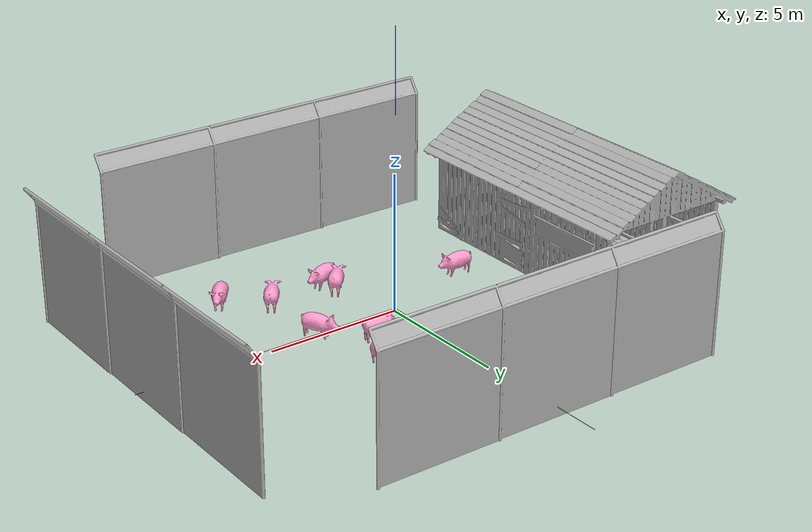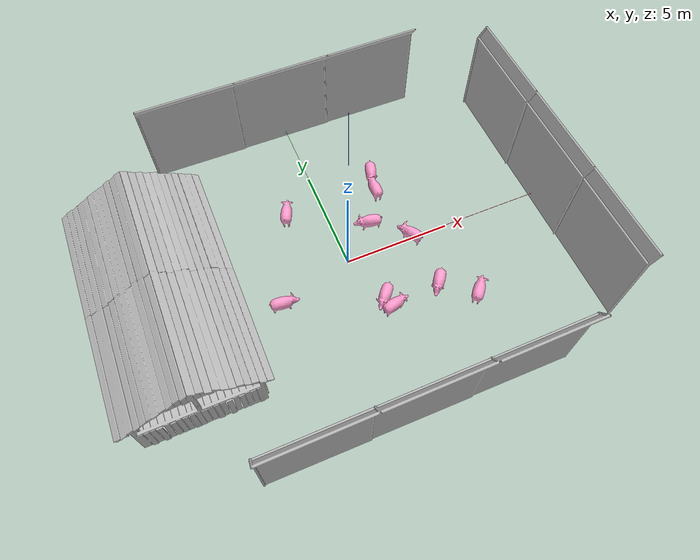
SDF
<sdf version="1.9">
 <world name="farm">
  <physics name="1ms" type="ignore">
   <max_step_size>0.001</max_step_size>
   <real_time_factor>1.0</real_time_factor>
  </physics>
  <plugin filename="gz-sim-physics-system" name="gz::sim::systems::Physics"/>
  <plugin filename="gz-sim-sensors-system" name="gz::sim::systems::Sensors">
   <render_engine>ogre2</render_engine>
  </plugin>
  <plugin filename="gz-sim-user-commands-system" name="gz::sim::systems::UserCommands"/>
  <plugin filename="gz-sim-scene-broadcaster-system" name="gz::sim::systems::SceneBroadcaster"/>
  <plugin filename="gz-sim-imu-system" name="gz::sim::systems::Imu"/>
  <plugin filename="gz-sim-navsat-system" name="gz::sim::systems::NavSat"/>
  <scene><ambient>1.0 1.0 1.0</ambient><background>0.8 0.8 0.8</background></scene>
  <spherical_coordinates>
   <latitude_deg>-35.363262</latitude_deg>
   <longitude_deg>149.165237</longitude_deg>
   <elevation>584</elevation>
   <heading_deg>0</heading_deg>
   <surface_model>EARTH_WGS84</surface_model>
  </spherical_coordinates>
  <light type="directional" name="sun">
   <pose>0 0 10 0 0 0</pose>
   <diffuse>0.8 0.8 0.8 1</diffuse>
   <specular>0.8 0.8 0.8 1</specular>
   <attenuation>
    <range>1000</range>
    <constant>0.9</constant>
    <linear>0.01</linear>
    <quadratic>0.001</quadratic>
   </attenuation>
   <direction>-0.5 0.1 -0.9</direction>
  </light>
  <model name="farm_animals">
   <static>1</static>
   <link name="link">
    <visual name="farm_house_visual">
     <pose degrees="true">-8 0 0 90 0 180</pose>
     <geometry><mesh><uri>model://farm/meshes/farm_house.obj</uri></mesh></geometry>
    </visual>
    <collision name="farm_house_collision">
     <pose degrees="true">-8 0 0 90 0 0</pose>
     <geometry><mesh><uri>model://farm/meshes/farm_house.obj</uri></mesh></geometry>
    </collision>
    <visual name="fence_left_visual">
     <pose degrees="true">0 8 0 90 0 0</pose>
     <geometry><mesh><uri>model://farm/meshes/wire_fence.obj</uri></mesh></geometry>
     <material>
      <pbr>
       <metal>
        <albedo>1.0 1.0 1.0 1.0</albedo>
        <metalness>1.0</metalness>
        <ambient_occlusion>1.0</ambient_occlusion>
       </metal>
      </pbr>
     </material>
    </visual>
    <collision name="fence_left_collision">
     <pose degrees="true">0 8 0 90 0 0</pose>
     <geometry><mesh><uri>model://farm/meshes/wire_fence.obj</uri></mesh></geometry>
    </collision>
    <visual name="fence_right_visual">
     <pose degrees="true">0 -8 0 90 0 0</pose>
     <geometry><mesh><uri>model://farm/meshes/wire_fence.obj</uri></mesh></geometry>
     <material>
      <pbr>
       <metal>
        <albedo>1.0 1.0 1.0 1.0</albedo>
        <metalness>1.0</metalness>
        <ambient_occlusion>1.0</ambient_occlusion>
       </metal>
      </pbr>
     </material>
    </visual>
    <collision name="fence_right_collision">
     <pose degrees="true">0 -8 0 90 0 0</pose>
     <geometry><mesh><uri>model://farm/meshes/wire_fence.obj</uri></mesh></geometry>
    </collision>
    <visual name="fence_back_visual">
     <pose degrees="true">10 0 0 90 0 90</pose>
     <geometry><mesh><uri>model://farm/meshes/wire_fence.obj</uri></mesh></geometry>
     <material>
      <pbr>
       <metal>
        <albedo>1.0 1.0 1.0 1.0</albedo>
        <metalness>1.0</metalness>
        <roughness>0.3</roughness>
        <ambient_occlusion>1.0</ambient_occlusion>
       </metal>
      </pbr>
     </material>
    </visual>
    <collision name="fence_back_collision">
     <pose degrees="true">10 0 0 90 0 90</pose>
     <geometry><mesh><uri>model://farm/meshes/wire_fence.obj</uri></mesh></geometry>
    </collision>
    <visual name="pig_visual0">
     <pose degrees="true">2.66 3.05 0 90 0 178.4</pose>
     <geometry><mesh><uri>model://farm/meshes/pig_low.obj</uri></mesh></geometry>
     <material>
      <ambient>1.0 0.6 0.8 1</ambient>
      <diffuse>1.0 0.6 0.8 1</diffuse>
      <specular>0.2 0.2 0.2 1</specular>
      <emissive>0 0 0 1</emissive>
     </material>
    </visual>
    <collision name="pig_collision0">
     <pose degrees="true">2.66 3.05 0 90 0 178.4</pose>
     <geometry><mesh><uri>model://farm/meshes/pig_low.obj</uri></mesh></geometry>
    </collision>
    <visual name="pig_visual1">
     <pose degrees="true">-1.74 3.31 0 90 0 156.8</pose>
     <geometry><mesh><uri>model://farm/meshes/pig_low.obj</uri></mesh></geometry>
     <material>
      <ambient>1.0 0.6 0.8 1</ambient>
      <diffuse>1.0 0.6 0.8 1</diffuse>
      <specular>0.2 0.2 0.2 1</specular>
      <emissive>0 0 0 1</emissive>
     </material>
    </visual>
    <collision name="pig_collision1">
     <pose degrees="true">-1.74 3.31 0 90 0 156.8</pose>
     <geometry><mesh><uri>model://farm/meshes/pig_low.obj</uri></mesh></geometry>
    </collision>
    <visual name="pig_visual2">
     <pose degrees="true">2.83 3.83 0 90 0 342.3</pose>
     <geometry><mesh><uri>model://farm/meshes/pig_low.obj</uri></mesh></geometry>
     <material>
      <ambient>1.0 0.6 0.8 1</ambient>
      <diffuse>1.0 0.6 0.8 1</diffuse>
      <specular>0.2 0.2 0.2 1</specular>
      <emissive>0 0 0 1</emissive>
     </material>
    </visual>
    <collision name="pig_collision2">
     <pose degrees="true">2.83 3.83 0 90 0 342.3</pose>
     <geometry><mesh><uri>model://farm/meshes/pig_low.obj</uri></mesh></geometry>
    </collision>
    <visual name="pig_visual3">
     <pose degrees="true">1.59 1.36 0 90 0 257.0</pose>
     <geometry><mesh><uri>model://farm/meshes/pig_low.obj</uri></mesh></geometry>
     <material>
      <ambient>1.0 0.6 0.8 1</ambient>
      <diffuse>1.0 0.6 0.8 1</diffuse>
      <specular>0.2 0.2 0.2 1</specular>
      <emissive>0 0 0 1</emissive>
     </material>
    </visual>
    <collision name="pig_collision3">
     <pose degrees="true">1.59 1.36 0 90 0 257.0</pose>
     <geometry><mesh><uri>model://farm/meshes/pig_low.obj</uri></mesh></geometry>
    </collision>
    <visual name="pig_visual4">
     <pose degrees="true">0.71 -2.45 0 90 0 318.0</pose>
     <geometry><mesh><uri>model://farm/meshes/pig_low.obj</uri></mesh></geometry>
     <material>
      <ambient>1.0 0.6 0.8 1</ambient>
      <diffuse>1.0 0.6 0.8 1</diffuse>
      <specular>0.2 0.2 0.2 1</specular>
      <emissive>0 0 0 1</emissive>
     </material>
    </visual>
    <collision name="pig_collision4">
     <pose degrees="true">0.71 -2.45 0 90 0 318.0</pose>
     <geometry><mesh><uri>model://farm/meshes/pig_low.obj</uri></mesh></geometry>
    </collision>
    <visual name="pig_visual5">
     <pose degrees="true">3.19 -2.74 0 90 0 322.7</pose>
     <geometry><mesh><uri>model://farm/meshes/pig_low.obj</uri></mesh></geometry>
     <material>
      <ambient>1.0 0.6 0.8 1</ambient>
      <diffuse>1.0 0.6 0.8 1</diffuse>
      <specular>0.2 0.2 0.2 1</specular>
      <emissive>0 0 0 1</emissive>
     </material>
    </visual>
    <collision name="pig_collision5">
     <pose degrees="true">3.19 -2.74 0 90 0 322.7</pose>
     <geometry><mesh><uri>model://farm/meshes/pig_low.obj</uri></mesh></geometry>
    </collision>
    <visual name="pig_visual6">
     <pose degrees="true">-3.43 -1.05 0 90 0 84.9</pose>
     <geometry><mesh><uri>model://farm/meshes/pig_low.obj</uri></mesh></geometry>
     <material>
      <ambient>1.0 0.6 0.8 1</ambient>
      <diffuse>1.0 0.6 0.8 1</diffuse>
      <specular>0.2 0.2 0.2 1</specular>
      <emissive>0 0 0 1</emissive>
     </material>
    </visual>
    <collision name="pig_collision6">
     <pose degrees="true">-3.43 -1.05 0 90 0 84.9</pose>
     <geometry><mesh><uri>model://farm/meshes/pig_low.obj</uri></mesh></geometry>
    </collision>
    <visual name="pig_visual7">
     <pose degrees="true">1.0 -2.95 0 90 0 103.4</pose>
     <geometry><mesh><uri>model://farm/meshes/pig_low.obj</uri></mesh></geometry>
     <material>
      <ambient>1.0 0.6 0.8 1</ambient>
      <diffuse>1.0 0.6 0.8 1</diffuse>
      <specular>0.2 0.2 0.2 1</specular>
      <emissive>0 0 0 1</emissive>
     </material>
    </visual>
    <collision name="pig_collision7">
     <pose degrees="true">1.0 -2.95 0 90 0 103.4</pose>
     <geometry><mesh><uri>model://farm/meshes/pig_low.obj</uri></mesh></geometry>
    </collision>
    <visual name="pig_visual8">
     <pose degrees="true">3.13 0.06 0 90 0 213.2</pose>
     <geometry><mesh><uri>model://farm/meshes/pig_low.obj</uri></mesh></geometry>
     <material>
      <ambient>1.0 0.6 0.8 1</ambient>
      <diffuse>1.0 0.6 0.8 1</diffuse>
      <specular>0.2 0.2 0.2 1</specular>
      <emissive>0 0 0 1</emissive>
     </material>
    </visual>
    <collision name="pig_collision8">
     <pose degrees="true">3.13 0.06 0 90 0 213.2</pose>
     <geometry><mesh><uri>model://farm/meshes/pig_low.obj</uri></mesh></geometry>
    </collision>
    <visual name="pig_visual9">
     <pose degrees="true">4.69 -3.71 0 90 0 139.1</pose>
     <geometry><mesh><uri>model://farm/meshes/pig_low.obj</uri></mesh></geometry>
     <material>
      <ambient>1.0 0.6 0.8 1</ambient>
      <diffuse>1.0 0.6 0.8 1</diffuse>
      <specular>0.2 0.2 0.2 1</specular>
      <emissive>0 0 0 1</emissive>
     </material>
    </visual>
    <collision name="pig_collision9">
     <pose degrees="true">4.69 -3.71 0 90 0 139.1</pose>
     <geometry><mesh><uri>model://farm/meshes/pig_low.obj</uri></mesh></geometry>
    </collision>
   </link>
  </model>
  <model name="axes">
   <static>1</static>
   <link name="link">
    <visual name="r">
     <cast_shadows>0</cast_shadows>
     <pose>5 0 0.1 0 0 0</pose>
     <geometry><box><size>10 0.01 0.01</size></box></geometry>
     <material>
      <ambient>1 0 0 0.8</ambient>
      <diffuse>1 0 0 0.8</diffuse>
      <emissive>1 0 0 0.8</emissive>
      <specular>0.5 0.5 0.5 0.8</specular>
     </material>
    </visual>
    <visual name="g">
     <cast_shadows>0</cast_shadows>
     <pose>0 5 0.1 0 0 0</pose>
     <geometry><box><size>0.01 10 0.01</size></box></geometry>
     <material>
      <ambient>0 1 0 0.8</ambient>
      <diffuse>0 1 0 0.8</diffuse>
      <emissive>0 1 0 0.8</emissive>
      <specular>0.5 0.5 0.5 0.8</specular>
     </material>
    </visual>
    <visual name="b">
     <cast_shadows>0</cast_shadows>
     <pose>0 0 5.1 0 0 0</pose>
     <geometry><box><size>0.01 0.01 10</size></box></geometry>
     <material>
      <ambient>0 0 1 0.8</ambient>
      <diffuse>0 0 1 0.8</diffuse>
      <emissive>0 0 1 0.8</emissive>
      <specular>0.5 0.5 0.5 0.8</specular>
     </material>
    </visual>
    <sensor name="navsat_sensor" type="navsat"><always_on>1</always_on><update_rate>1</update_rate></sensor>
   </link>
  </model>
 </world>
</sdf>
